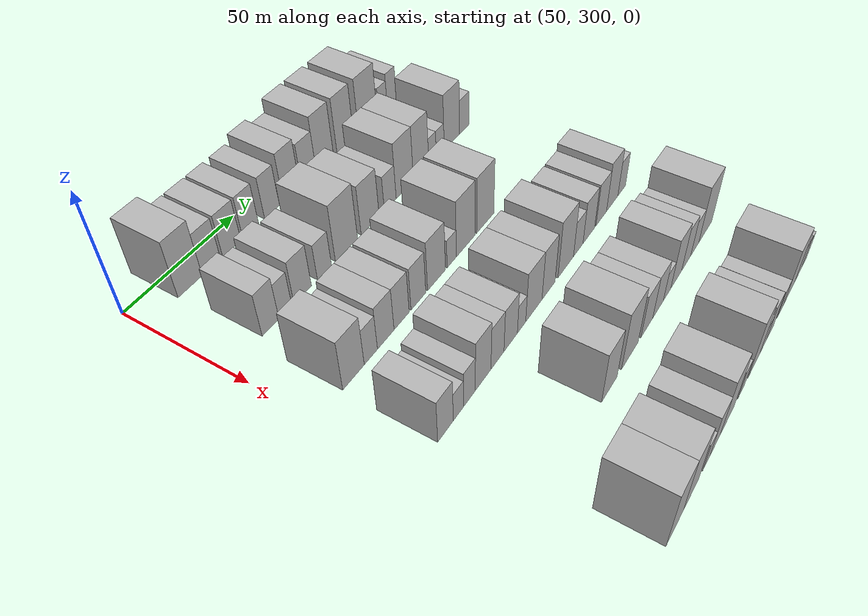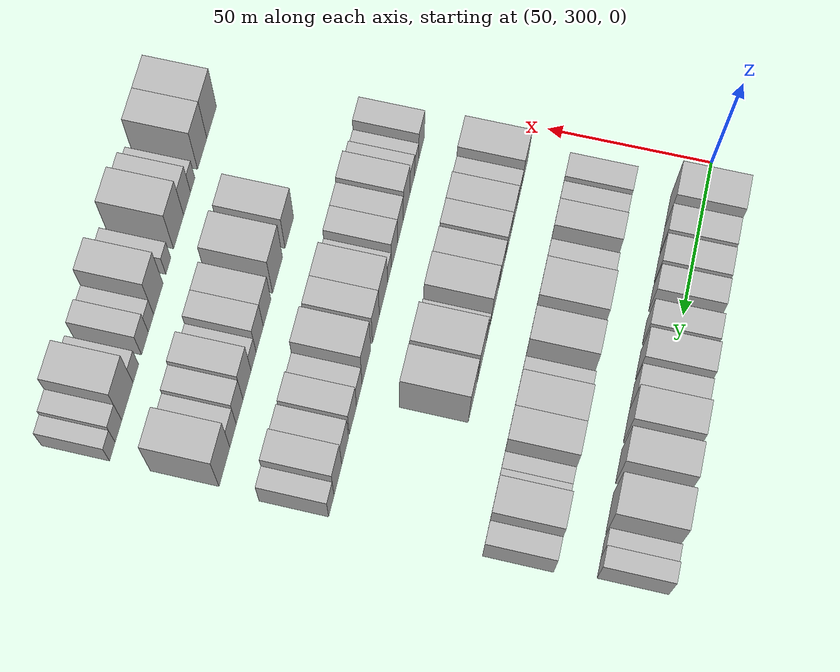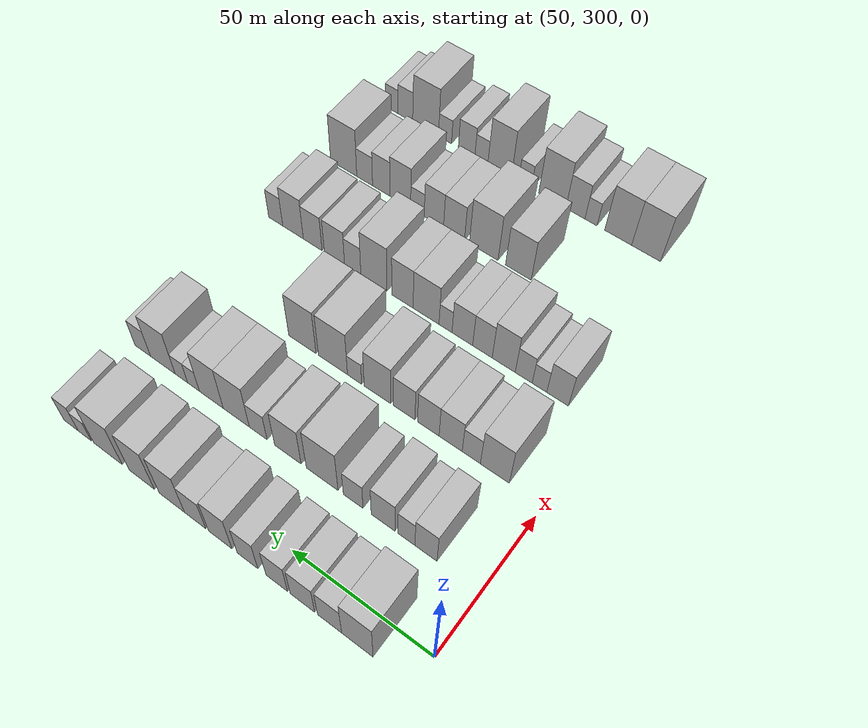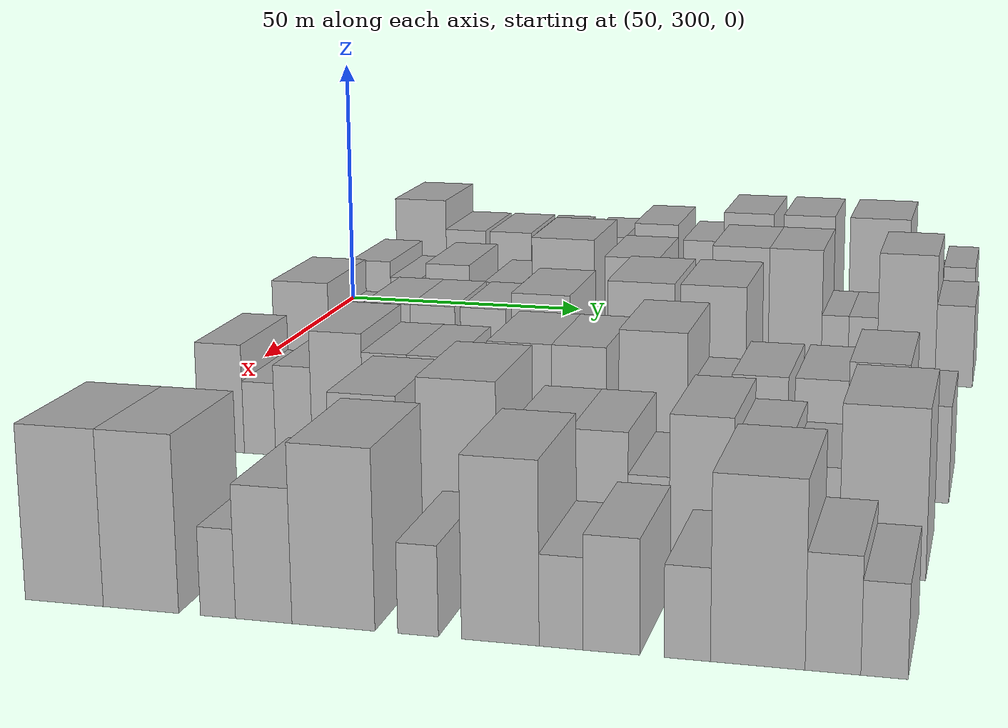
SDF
<sdf version="1.6">
 <world name="default">
  <model name="building_93">
   <static>1</static>
   <pose>50.0000 318.7629 0 0.000000 0.000000 0.000000</pose>
   <link name="link">
    <pose>0 0 12.00 0 0 0</pose>
    <collision name="collision"><geometry><box><size>20.0000 10.7792 24.0000</size></box></geometry></collision>
    <visual name="visual">
     <cast_shadows>0</cast_shadows>
     <geometry><box><size>20.0000 10.7792 24.0000</size></box></geometry>
     <material>
      <script>
       <uri>model://HANNAS_wall/materials/scripts</uri>
       <uri>model://HANNAS_wall/materials/textures</uri>
       <name>vrc/HANNAS_wall</name>
      </script>
     </material>
    </visual>
   </link>
  </model>
  <model name="building_94">
   <static>1</static>
   <pose>50.0000 328.3762 0 0.000000 0.000000 0.000000</pose>
   <link name="link">
    <pose>0 0 9.00 0 0 0</pose>
    <collision name="collision"><geometry><box><size>20.0000 8.4474 18.0000</size></box></geometry></collision>
    <visual name="visual">
     <cast_shadows>0</cast_shadows>
     <geometry><box><size>20.0000 8.4474 18.0000</size></box></geometry>
     <material>
      <script>
       <uri>model://HANNAS_wall/materials/scripts</uri>
       <uri>model://HANNAS_wall/materials/textures</uri>
       <name>vrc/HANNAS_wall</name>
      </script>
     </material>
    </visual>
   </link>
  </model>
  <model name="building_95">
   <static>1</static>
   <pose>50.0000 337.9618 0 0.000000 0.000000 0.000000</pose>
   <link name="link">
    <pose>0 0 9.00 0 0 0</pose>
    <collision name="collision"><geometry><box><size>20.0000 8.7237 18.0000</size></box></geometry></collision>
    <visual name="visual">
     <cast_shadows>0</cast_shadows>
     <geometry><box><size>20.0000 8.7237 18.0000</size></box></geometry>
     <material>
      <script>
       <uri>model://HANNAS_wall/materials/scripts</uri>
       <uri>model://HANNAS_wall/materials/textures</uri>
       <name>vrc/HANNAS_wall</name>
      </script>
     </material>
    </visual>
   </link>
  </model>
  <model name="building_96">
   <static>1</static>
   <pose>50.0000 347.2610 0 0.000000 0.000000 0.000000</pose>
   <link name="link">
    <pose>0 0 9.00 0 0 0</pose>
    <collision name="collision"><geometry><box><size>20.0000 7.8748 18.0000</size></box></geometry></collision>
    <visual name="visual">
     <cast_shadows>0</cast_shadows>
     <geometry><box><size>20.0000 7.8748 18.0000</size></box></geometry>
     <material>
      <script>
       <uri>model://HANNAS_wall/materials/scripts</uri>
       <uri>model://HANNAS_wall/materials/textures</uri>
       <name>vrc/HANNAS_wall</name>
      </script>
     </material>
    </visual>
   </link>
  </model>
  <model name="building_97">
   <static>1</static>
   <pose>50.0000 358.0329 0 0.000000 0.000000 0.000000</pose>
   <link name="link">
    <pose>0 0 9.00 0 0 0</pose>
    <collision name="collision"><geometry><box><size>20.0000 7.6691 18.0000</size></box></geometry></collision>
    <visual name="visual">
     <cast_shadows>0</cast_shadows>
     <geometry><box><size>20.0000 7.6691 18.0000</size></box></geometry>
     <material>
      <script>
       <uri>model://HANNAS_wall/materials/scripts</uri>
       <uri>model://HANNAS_wall/materials/textures</uri>
       <name>vrc/HANNAS_wall</name>
      </script>
     </material>
    </visual>
   </link>
  </model>
  <model name="building_98">
   <static>1</static>
   <pose>50.0000 368.3294 0 0.000000 0.000000 0.000000</pose>
   <link name="link">
    <pose>0 0 10.50 0 0 0</pose>
    <collision name="collision"><geometry><box><size>20.0000 8.9239 21.0000</size></box></geometry></collision>
    <visual name="visual">
     <cast_shadows>0</cast_shadows>
     <geometry><box><size>20.0000 8.9239 21.0000</size></box></geometry>
     <material>
      <script>
       <uri>model://HANNAS_wall/materials/scripts</uri>
       <uri>model://HANNAS_wall/materials/textures</uri>
       <name>vrc/HANNAS_wall</name>
      </script>
     </material>
    </visual>
   </link>
  </model>
  <model name="building_99">
   <static>1</static>
   <pose>50.0000 377.9272 0 0.000000 0.000000 0.000000</pose>
   <link name="link">
    <pose>0 0 9.00 0 0 0</pose>
    <collision name="collision"><geometry><box><size>20.0000 8.2716 18.0000</size></box></geometry></collision>
    <visual name="visual">
     <cast_shadows>0</cast_shadows>
     <geometry><box><size>20.0000 8.2716 18.0000</size></box></geometry>
     <material>
      <script>
       <uri>model://HANNAS_wall/materials/scripts</uri>
       <uri>model://HANNAS_wall/materials/textures</uri>
       <name>vrc/HANNAS_wall</name>
      </script>
     </material>
    </visual>
   </link>
  </model>
  <model name="building_100">
   <static>1</static>
   <pose>50.0000 387.0611 0 0.000000 0.000000 0.000000</pose>
   <link name="link">
    <pose>0 0 12.00 0 0 0</pose>
    <collision name="collision"><geometry><box><size>20.0000 9.9962 24.0000</size></box></geometry></collision>
    <visual name="visual">
     <cast_shadows>0</cast_shadows>
     <geometry><box><size>20.0000 9.9962 24.0000</size></box></geometry>
     <material>
      <script>
       <uri>model://HANNAS_wall/materials/scripts</uri>
       <uri>model://HANNAS_wall/materials/textures</uri>
       <name>vrc/HANNAS_wall</name>
      </script>
     </material>
    </visual>
   </link>
  </model>
  <model name="building_101">
   <static>1</static>
   <pose>50.0000 399.1096 0 0.000000 0.000000 0.000000</pose>
   <link name="link">
    <pose>0 0 12.00 0 0 0</pose>
    <collision name="collision"><geometry><box><size>20.0000 10.1007 24.0000</size></box></geometry></collision>
    <visual name="visual">
     <cast_shadows>0</cast_shadows>
     <geometry><box><size>20.0000 10.1007 24.0000</size></box></geometry>
     <material>
      <script>
       <uri>model://HANNAS_wall/materials/scripts</uri>
       <uri>model://HANNAS_wall/materials/textures</uri>
       <name>vrc/HANNAS_wall</name>
      </script>
     </material>
    </visual>
   </link>
  </model>
  <model name="building_102">
   <static>1</static>
   <pose>50.0000 413.0698 0 0.000000 0.000000 0.000000</pose>
   <link name="link">
    <pose>0 0 12.00 0 0 0</pose>
    <collision name="collision"><geometry><box><size>20.0000 11.8197 24.0000</size></box></geometry></collision>
    <visual name="visual">
     <cast_shadows>0</cast_shadows>
     <geometry><box><size>20.0000 11.8197 24.0000</size></box></geometry>
     <material>
      <script>
       <uri>model://HANNAS_wall/materials/scripts</uri>
       <uri>model://HANNAS_wall/materials/textures</uri>
       <name>vrc/HANNAS_wall</name>
      </script>
     </material>
    </visual>
   </link>
  </model>
  <model name="building_103">
   <static>1</static>
   <pose>50.0000 422.7765 0 0.000000 0.000000 0.000000</pose>
   <link name="link">
    <pose>0 0 6.00 0 0 0</pose>
    <collision name="collision"><geometry><box><size>20.0000 5.5938 12.0000</size></box></geometry></collision>
    <visual name="visual">
     <cast_shadows>0</cast_shadows>
     <geometry><box><size>20.0000 5.5938 12.0000</size></box></geometry>
     <material>
      <script>
       <uri>model://HANNAS_wall/materials/scripts</uri>
       <uri>model://HANNAS_wall/materials/textures</uri>
       <name>vrc/HANNAS_wall</name>
      </script>
     </material>
    </visual>
   </link>
  </model>
  <model name="building_104">
   <static>1</static>
   <pose>50.0000 428.6081 0 0.000000 0.000000 0.000000</pose>
   <link name="link">
    <pose>0 0 7.50 0 0 0</pose>
    <collision name="collision"><geometry><box><size>20.0000 6.0694 15.0000</size></box></geometry></collision>
    <visual name="visual">
     <cast_shadows>0</cast_shadows>
     <geometry><box><size>20.0000 6.0694 15.0000</size></box></geometry>
     <material>
      <script>
       <uri>model://HANNAS_wall/materials/scripts</uri>
       <uri>model://HANNAS_wall/materials/textures</uri>
       <name>vrc/HANNAS_wall</name>
      </script>
     </material>
    </visual>
   </link>
  </model>
  <model name="building_217">
   <static>1</static>
   <pose>82.0000 318.9742 0 0.000000 0.000000 0.000000</pose>
   <link name="link">
    <pose>0 0 9.00 0 0 0</pose>
    <collision name="collision"><geometry><box><size>20.0000 7.7578 18.0000</size></box></geometry></collision>
    <visual name="visual">
     <cast_shadows>0</cast_shadows>
     <geometry><box><size>20.0000 7.7578 18.0000</size></box></geometry>
     <material>
      <script>
       <uri>model://HANNAS_wall/materials/scripts</uri>
       <uri>model://HANNAS_wall/materials/textures</uri>
       <name>vrc/HANNAS_wall</name>
      </script>
     </material>
    </visual>
   </link>
  </model>
  <model name="building_218">
   <static>1</static>
   <pose>82.0000 325.9021 0 0.000000 0.000000 0.000000</pose>
   <link name="link">
    <pose>0 0 7.50 0 0 0</pose>
    <collision name="collision"><geometry><box><size>20.0000 6.0980 15.0000</size></box></geometry></collision>
    <visual name="visual">
     <cast_shadows>0</cast_shadows>
     <geometry><box><size>20.0000 6.0980 15.0000</size></box></geometry>
     <material>
      <script>
       <uri>model://HANNAS_wall/materials/scripts</uri>
       <uri>model://HANNAS_wall/materials/textures</uri>
       <name>vrc/HANNAS_wall</name>
      </script>
     </material>
    </visual>
   </link>
  </model>
  <model name="building_219">
   <static>1</static>
   <pose>82.0000 334.2388 0 0.000000 0.000000 0.000000</pose>
   <link name="link">
    <pose>0 0 9.00 0 0 0</pose>
    <collision name="collision"><geometry><box><size>20.0000 8.5753 18.0000</size></box></geometry></collision>
    <visual name="visual">
     <cast_shadows>0</cast_shadows>
     <geometry><box><size>20.0000 8.5753 18.0000</size></box></geometry>
     <material>
      <script>
       <uri>model://HANNAS_wall/materials/scripts</uri>
       <uri>model://HANNAS_wall/materials/textures</uri>
       <name>vrc/HANNAS_wall</name>
      </script>
     </material>
    </visual>
   </link>
  </model>
  <model name="building_220">
   <static>1</static>
   <pose>82.0000 345.1519 0 0.000000 0.000000 0.000000</pose>
   <link name="link">
    <pose>0 0 7.50 0 0 0</pose>
    <collision name="collision"><geometry><box><size>20.0000 7.2509 15.0000</size></box></geometry></collision>
    <visual name="visual">
     <cast_shadows>0</cast_shadows>
     <geometry><box><size>20.0000 7.2509 15.0000</size></box></geometry>
     <material>
      <script>
       <uri>model://HANNAS_wall/materials/scripts</uri>
       <uri>model://HANNAS_wall/materials/textures</uri>
       <name>vrc/HANNAS_wall</name>
      </script>
     </material>
    </visual>
   </link>
  </model>
  <model name="building_221">
   <static>1</static>
   <pose>82.0000 356.7649 0 0.000000 0.000000 0.000000</pose>
   <link name="link">
    <pose>0 0 12.00 0 0 0</pose>
    <collision name="collision"><geometry><box><size>20.0000 11.9751 24.0000</size></box></geometry></collision>
    <visual name="visual">
     <cast_shadows>0</cast_shadows>
     <geometry><box><size>20.0000 11.9751 24.0000</size></box></geometry>
     <material>
      <script>
       <uri>model://HANNAS_wall/materials/scripts</uri>
       <uri>model://HANNAS_wall/materials/textures</uri>
       <name>vrc/HANNAS_wall</name>
      </script>
     </material>
    </visual>
   </link>
  </model>
  <model name="building_222">
   <static>1</static>
   <pose>82.0000 369.8709 0 0.000000 0.000000 0.000000</pose>
   <link name="link">
    <pose>0 0 10.50 0 0 0</pose>
    <collision name="collision"><geometry><box><size>20.0000 10.2370 21.0000</size></box></geometry></collision>
    <visual name="visual">
     <cast_shadows>0</cast_shadows>
     <geometry><box><size>20.0000 10.2370 21.0000</size></box></geometry>
     <material>
      <script>
       <uri>model://HANNAS_wall/materials/scripts</uri>
       <uri>model://HANNAS_wall/materials/textures</uri>
       <name>vrc/HANNAS_wall</name>
      </script>
     </material>
    </visual>
   </link>
  </model>
  <model name="building_223">
   <static>1</static>
   <pose>82.0000 381.4920 0 0.000000 0.000000 0.000000</pose>
   <link name="link">
    <pose>0 0 7.50 0 0 0</pose>
    <collision name="collision"><geometry><box><size>20.0000 7.0051 15.0000</size></box></geometry></collision>
    <visual name="visual">
     <cast_shadows>0</cast_shadows>
     <geometry><box><size>20.0000 7.0051 15.0000</size></box></geometry>
     <material>
      <script>
       <uri>model://HANNAS_wall/materials/scripts</uri>
       <uri>model://HANNAS_wall/materials/textures</uri>
       <name>vrc/HANNAS_wall</name>
      </script>
     </material>
    </visual>
   </link>
  </model>
  <model name="building_224">
   <static>1</static>
   <pose>82.0000 390.2802 0 0.000000 0.000000 0.000000</pose>
   <link name="link">
    <pose>0 0 12.00 0 0 0</pose>
    <collision name="collision"><geometry><box><size>20.0000 10.5713 24.0000</size></box></geometry></collision>
    <visual name="visual">
     <cast_shadows>0</cast_shadows>
     <geometry><box><size>20.0000 10.5713 24.0000</size></box></geometry>
     <material>
      <script>
       <uri>model://HANNAS_wall/materials/scripts</uri>
       <uri>model://HANNAS_wall/materials/textures</uri>
       <name>vrc/HANNAS_wall</name>
      </script>
     </material>
    </visual>
   </link>
  </model>
  <model name="building_225">
   <static>1</static>
   <pose>82.0000 400.4667 0 0.000000 0.000000 0.000000</pose>
   <link name="link">
    <pose>0 0 12.00 0 0 0</pose>
    <collision name="collision"><geometry><box><size>20.0000 9.8017 24.0000</size></box></geometry></collision>
    <visual name="visual">
     <cast_shadows>0</cast_shadows>
     <geometry><box><size>20.0000 9.8017 24.0000</size></box></geometry>
     <material>
      <script>
       <uri>model://HANNAS_wall/materials/scripts</uri>
       <uri>model://HANNAS_wall/materials/textures</uri>
       <name>vrc/HANNAS_wall</name>
      </script>
     </material>
    </visual>
   </link>
  </model>
  <model name="building_226">
   <static>1</static>
   <pose>82.0000 407.8193 0 0.000000 0.000000 0.000000</pose>
   <link name="link">
    <pose>0 0 6.00 0 0 0</pose>
    <collision name="collision"><geometry><box><size>20.0000 4.9035 12.0000</size></box></geometry></collision>
    <visual name="visual">
     <cast_shadows>0</cast_shadows>
     <geometry><box><size>20.0000 4.9035 12.0000</size></box></geometry>
     <material>
      <script>
       <uri>model://HANNAS_wall/materials/scripts</uri>
       <uri>model://HANNAS_wall/materials/textures</uri>
       <name>vrc/HANNAS_wall</name>
      </script>
     </material>
    </visual>
   </link>
  </model>
  <model name="building_227">
   <static>1</static>
   <pose>82.0000 412.8957 0 0.000000 0.000000 0.000000</pose>
   <link name="link">
    <pose>0 0 6.00 0 0 0</pose>
    <collision name="collision"><geometry><box><size>20.0000 5.2493 12.0000</size></box></geometry></collision>
    <visual name="visual">
     <cast_shadows>0</cast_shadows>
     <geometry><box><size>20.0000 5.2493 12.0000</size></box></geometry>
     <material>
      <script>
       <uri>model://HANNAS_wall/materials/scripts</uri>
       <uri>model://HANNAS_wall/materials/textures</uri>
       <name>vrc/HANNAS_wall</name>
      </script>
     </material>
    </visual>
   </link>
  </model>
  <model name="building_228">
   <static>1</static>
   <pose>82.0000 420.7695 0 0.000000 0.000000 0.000000</pose>
   <link name="link">
    <pose>0 0 12.00 0 0 0</pose>
    <collision name="collision"><geometry><box><size>20.0000 10.4983 24.0000</size></box></geometry></collision>
    <visual name="visual">
     <cast_shadows>0</cast_shadows>
     <geometry><box><size>20.0000 10.4983 24.0000</size></box></geometry>
     <material>
      <script>
       <uri>model://HANNAS_wall/materials/scripts</uri>
       <uri>model://HANNAS_wall/materials/textures</uri>
       <name>vrc/HANNAS_wall</name>
      </script>
     </material>
    </visual>
   </link>
  </model>
  <model name="building_229">
   <static>1</static>
   <pose>82.0000 429.3785 0 0.000000 0.000000 0.000000</pose>
   <link name="link">
    <pose>0 0 7.50 0 0 0</pose>
    <collision name="collision"><geometry><box><size>20.0000 6.7196 15.0000</size></box></geometry></collision>
    <visual name="visual">
     <cast_shadows>0</cast_shadows>
     <geometry><box><size>20.0000 6.7196 15.0000</size></box></geometry>
     <material>
      <script>
       <uri>model://HANNAS_wall/materials/scripts</uri>
       <uri>model://HANNAS_wall/materials/textures</uri>
       <name>vrc/HANNAS_wall</name>
      </script>
     </material>
    </visual>
   </link>
  </model>
  <model name="building_337">
   <static>1</static>
   <pose>114.0000 317.0453 0 0.000000 0.000000 0.000000</pose>
   <link name="link">
    <pose>0 0 10.50 0 0 0</pose>
    <collision name="collision"><geometry><box><size>20.0000 10.3154 21.0000</size></box></geometry></collision>
    <visual name="visual">
     <cast_shadows>0</cast_shadows>
     <geometry><box><size>20.0000 10.3154 21.0000</size></box></geometry>
     <material>
      <script>
       <uri>model://HANNAS_wall/materials/scripts</uri>
       <uri>model://HANNAS_wall/materials/textures</uri>
       <name>vrc/HANNAS_wall</name>
      </script>
     </material>
    </visual>
   </link>
  </model>
  <model name="building_338">
   <static>1</static>
   <pose>114.0000 325.4904 0 0.000000 0.000000 0.000000</pose>
   <link name="link">
    <pose>0 0 7.50 0 0 0</pose>
    <collision name="collision"><geometry><box><size>20.0000 6.5748 15.0000</size></box></geometry></collision>
    <visual name="visual">
     <cast_shadows>0</cast_shadows>
     <geometry><box><size>20.0000 6.5748 15.0000</size></box></geometry>
     <material>
      <script>
       <uri>model://HANNAS_wall/materials/scripts</uri>
       <uri>model://HANNAS_wall/materials/textures</uri>
       <name>vrc/HANNAS_wall</name>
      </script>
     </material>
    </visual>
   </link>
  </model>
  <model name="building_339">
   <static>1</static>
   <pose>114.0000 333.0265 0 0.000000 0.000000 0.000000</pose>
   <link name="link">
    <pose>0 0 9.00 0 0 0</pose>
    <collision name="collision"><geometry><box><size>20.0000 8.4974 18.0000</size></box></geometry></collision>
    <visual name="visual">
     <cast_shadows>0</cast_shadows>
     <geometry><box><size>20.0000 8.4974 18.0000</size></box></geometry>
     <material>
      <script>
       <uri>model://HANNAS_wall/materials/scripts</uri>
       <uri>model://HANNAS_wall/materials/textures</uri>
       <name>vrc/HANNAS_wall</name>
      </script>
     </material>
    </visual>
   </link>
  </model>
  <model name="building_340">
   <static>1</static>
   <pose>114.0000 341.3000 0 0.000000 0.000000 0.000000</pose>
   <link name="link">
    <pose>0 0 9.00 0 0 0</pose>
    <collision name="collision"><geometry><box><size>20.0000 8.0494 18.0000</size></box></geometry></collision>
    <visual name="visual">
     <cast_shadows>0</cast_shadows>
     <geometry><box><size>20.0000 8.0494 18.0000</size></box></geometry>
     <material>
      <script>
       <uri>model://HANNAS_wall/materials/scripts</uri>
       <uri>model://HANNAS_wall/materials/textures</uri>
       <name>vrc/HANNAS_wall</name>
      </script>
     </material>
    </visual>
   </link>
  </model>
  <model name="building_341">
   <static>1</static>
   <pose>114.0000 350.4089 0 0.000000 0.000000 0.000000</pose>
   <link name="link">
    <pose>0 0 9.00 0 0 0</pose>
    <collision name="collision"><geometry><box><size>20.0000 8.1684 18.0000</size></box></geometry></collision>
    <visual name="visual">
     <cast_shadows>0</cast_shadows>
     <geometry><box><size>20.0000 8.1684 18.0000</size></box></geometry>
     <material>
      <script>
       <uri>model://HANNAS_wall/materials/scripts</uri>
       <uri>model://HANNAS_wall/materials/textures</uri>
       <name>vrc/HANNAS_wall</name>
      </script>
     </material>
    </visual>
   </link>
  </model>
  <model name="building_342">
   <static>1</static>
   <pose>114.0000 360.6477 0 0.000000 0.000000 0.000000</pose>
   <link name="link">
    <pose>0 0 10.50 0 0 0</pose>
    <collision name="collision"><geometry><box><size>20.0000 10.3093 21.0000</size></box></geometry></collision>
    <visual name="visual">
     <cast_shadows>0</cast_shadows>
     <geometry><box><size>20.0000 10.3093 21.0000</size></box></geometry>
     <material>
      <script>
       <uri>model://HANNAS_wall/materials/scripts</uri>
       <uri>model://HANNAS_wall/materials/textures</uri>
       <name>vrc/HANNAS_wall</name>
      </script>
     </material>
    </visual>
   </link>
  </model>
  <model name="building_343">
   <static>1</static>
   <pose>114.0000 369.5740 0 0.000000 0.000000 0.000000</pose>
   <link name="link">
    <pose>0 0 6.00 0 0 0</pose>
    <collision name="collision"><geometry><box><size>20.0000 5.5432 12.0000</size></box></geometry></collision>
    <visual name="visual">
     <cast_shadows>0</cast_shadows>
     <geometry><box><size>20.0000 5.5432 12.0000</size></box></geometry>
     <material>
      <script>
       <uri>model://HANNAS_wall/materials/scripts</uri>
       <uri>model://HANNAS_wall/materials/textures</uri>
       <name>vrc/HANNAS_wall</name>
      </script>
     </material>
    </visual>
   </link>
  </model>
  <model name="building_344">
   <static>1</static>
   <pose>114.0000 378.1461 0 0.000000 0.000000 0.000000</pose>
   <link name="link">
    <pose>0 0 12.00 0 0 0</pose>
    <collision name="collision"><geometry><box><size>20.0000 11.6010 24.0000</size></box></geometry></collision>
    <visual name="visual">
     <cast_shadows>0</cast_shadows>
     <geometry><box><size>20.0000 11.6010 24.0000</size></box></geometry>
     <material>
      <script>
       <uri>model://HANNAS_wall/materials/scripts</uri>
       <uri>model://HANNAS_wall/materials/textures</uri>
       <name>vrc/HANNAS_wall</name>
      </script>
     </material>
    </visual>
   </link>
  </model>
  <model name="building_345">
   <static>1</static>
   <pose>114.0000 390.5290 0 0.000000 0.000000 0.000000</pose>
   <link name="link">
    <pose>0 0 12.00 0 0 0</pose>
    <collision name="collision"><geometry><box><size>20.0000 11.1648 24.0000</size></box></geometry></collision>
    <visual name="visual">
     <cast_shadows>0</cast_shadows>
     <geometry><box><size>20.0000 11.1648 24.0000</size></box></geometry>
     <material>
      <script>
       <uri>model://HANNAS_wall/materials/scripts</uri>
       <uri>model://HANNAS_wall/materials/textures</uri>
       <name>vrc/HANNAS_wall</name>
      </script>
     </material>
    </visual>
   </link>
  </model>
  <model name="building_446">
   <static>1</static>
   <pose>146.0000 315.3664 0 0.000000 0.000000 0.000000</pose>
   <link name="link">
    <pose>0 0 9.00 0 0 0</pose>
    <collision name="collision"><geometry><box><size>20.0000 7.8794 18.0000</size></box></geometry></collision>
    <visual name="visual">
     <cast_shadows>0</cast_shadows>
     <geometry><box><size>20.0000 7.8794 18.0000</size></box></geometry>
     <material>
      <script>
       <uri>model://HANNAS_wall/materials/scripts</uri>
       <uri>model://HANNAS_wall/materials/textures</uri>
       <name>vrc/HANNAS_wall</name>
      </script>
     </material>
    </visual>
   </link>
  </model>
  <model name="building_447">
   <static>1</static>
   <pose>146.0000 321.9917 0 0.000000 0.000000 0.000000</pose>
   <link name="link">
    <pose>0 0 6.00 0 0 0</pose>
    <collision name="collision"><geometry><box><size>20.0000 5.3712 12.0000</size></box></geometry></collision>
    <visual name="visual">
     <cast_shadows>0</cast_shadows>
     <geometry><box><size>20.0000 5.3712 12.0000</size></box></geometry>
     <material>
      <script>
       <uri>model://HANNAS_wall/materials/scripts</uri>
       <uri>model://HANNAS_wall/materials/textures</uri>
       <name>vrc/HANNAS_wall</name>
      </script>
     </material>
    </visual>
   </link>
  </model>
  <model name="building_448">
   <static>1</static>
   <pose>146.0000 327.8166 0 0.000000 0.000000 0.000000</pose>
   <link name="link">
    <pose>0 0 7.50 0 0 0</pose>
    <collision name="collision"><geometry><box><size>20.0000 6.2786 15.0000</size></box></geometry></collision>
    <visual name="visual">
     <cast_shadows>0</cast_shadows>
     <geometry><box><size>20.0000 6.2786 15.0000</size></box></geometry>
     <material>
      <script>
       <uri>model://HANNAS_wall/materials/scripts</uri>
       <uri>model://HANNAS_wall/materials/textures</uri>
       <name>vrc/HANNAS_wall</name>
      </script>
     </material>
    </visual>
   </link>
  </model>
  <model name="building_449">
   <static>1</static>
   <pose>146.0000 335.2959 0 0.000000 0.000000 0.000000</pose>
   <link name="link">
    <pose>0 0 10.50 0 0 0</pose>
    <collision name="collision"><geometry><box><size>20.0000 8.6800 21.0000</size></box></geometry></collision>
    <visual name="visual">
     <cast_shadows>0</cast_shadows>
     <geometry><box><size>20.0000 8.6800 21.0000</size></box></geometry>
     <material>
      <script>
       <uri>model://HANNAS_wall/materials/scripts</uri>
       <uri>model://HANNAS_wall/materials/textures</uri>
       <name>vrc/HANNAS_wall</name>
      </script>
     </material>
    </visual>
   </link>
  </model>
  <model name="building_450">
   <static>1</static>
   <pose>146.0000 343.3808 0 0.000000 0.000000 0.000000</pose>
   <link name="link">
    <pose>0 0 9.00 0 0 0</pose>
    <collision name="collision"><geometry><box><size>20.0000 7.4898 18.0000</size></box></geometry></collision>
    <visual name="visual">
     <cast_shadows>0</cast_shadows>
     <geometry><box><size>20.0000 7.4898 18.0000</size></box></geometry>
     <material>
      <script>
       <uri>model://HANNAS_wall/materials/scripts</uri>
       <uri>model://HANNAS_wall/materials/textures</uri>
       <name>vrc/HANNAS_wall</name>
      </script>
     </material>
    </visual>
   </link>
  </model>
  <model name="building_451">
   <static>1</static>
   <pose>146.0000 351.1276 0 0.000000 0.000000 0.000000</pose>
   <link name="link">
    <pose>0 0 9.00 0 0 0</pose>
    <collision name="collision"><geometry><box><size>20.0000 8.0038 18.0000</size></box></geometry></collision>
    <visual name="visual">
     <cast_shadows>0</cast_shadows>
     <geometry><box><size>20.0000 8.0038 18.0000</size></box></geometry>
     <material>
      <script>
       <uri>model://HANNAS_wall/materials/scripts</uri>
       <uri>model://HANNAS_wall/materials/textures</uri>
       <name>vrc/HANNAS_wall</name>
      </script>
     </material>
    </visual>
   </link>
  </model>
  <model name="building_452">
   <static>1</static>
   <pose>146.0000 357.6821 0 0.000000 0.000000 0.000000</pose>
   <link name="link">
    <pose>0 0 6.00 0 0 0</pose>
    <collision name="collision"><geometry><box><size>20.0000 5.1051 12.0000</size></box></geometry></collision>
    <visual name="visual">
     <cast_shadows>0</cast_shadows>
     <geometry><box><size>20.0000 5.1051 12.0000</size></box></geometry>
     <material>
      <script>
       <uri>model://HANNAS_wall/materials/scripts</uri>
       <uri>model://HANNAS_wall/materials/textures</uri>
       <name>vrc/HANNAS_wall</name>
      </script>
     </material>
    </visual>
   </link>
  </model>
  <model name="building_453">
   <static>1</static>
   <pose>146.0000 365.3919 0 0.000000 0.000000 0.000000</pose>
   <link name="link">
    <pose>0 0 10.50 0 0 0</pose>
    <collision name="collision"><geometry><box><size>20.0000 10.3145 21.0000</size></box></geometry></collision>
    <visual name="visual">
     <cast_shadows>0</cast_shadows>
     <geometry><box><size>20.0000 10.3145 21.0000</size></box></geometry>
     <material>
      <script>
       <uri>model://HANNAS_wall/materials/scripts</uri>
       <uri>model://HANNAS_wall/materials/textures</uri>
       <name>vrc/HANNAS_wall</name>
      </script>
     </material>
    </visual>
   </link>
  </model>
  <model name="building_454">
   <static>1</static>
   <pose>146.0000 374.8633 0 0.000000 0.000000 0.000000</pose>
   <link name="link">
    <pose>0 0 10.50 0 0 0</pose>
    <collision name="collision"><geometry><box><size>20.0000 8.6283 21.0000</size></box></geometry></collision>
    <visual name="visual">
     <cast_shadows>0</cast_shadows>
     <geometry><box><size>20.0000 8.6283 21.0000</size></box></geometry>
     <material>
      <script>
       <uri>model://HANNAS_wall/materials/scripts</uri>
       <uri>model://HANNAS_wall/materials/textures</uri>
       <name>vrc/HANNAS_wall</name>
      </script>
     </material>
    </visual>
   </link>
  </model>
  <model name="building_455">
   <static>1</static>
   <pose>146.0000 386.5306 0 0.000000 0.000000 0.000000</pose>
   <link name="link">
    <pose>0 0 12.00 0 0 0</pose>
    <collision name="collision"><geometry><box><size>20.0000 10.7063 24.0000</size></box></geometry></collision>
    <visual name="visual">
     <cast_shadows>0</cast_shadows>
     <geometry><box><size>20.0000 10.7063 24.0000</size></box></geometry>
     <material>
      <script>
       <uri>model://HANNAS_wall/materials/scripts</uri>
       <uri>model://HANNAS_wall/materials/textures</uri>
       <name>vrc/HANNAS_wall</name>
      </script>
     </material>
    </visual>
   </link>
  </model>
  <model name="building_456">
   <static>1</static>
   <pose>146.0000 395.2908 0 0.000000 0.000000 0.000000</pose>
   <link name="link">
    <pose>0 0 7.50 0 0 0</pose>
    <collision name="collision"><geometry><box><size>20.0000 6.8141 15.0000</size></box></geometry></collision>
    <visual name="visual">
     <cast_shadows>0</cast_shadows>
     <geometry><box><size>20.0000 6.8141 15.0000</size></box></geometry>
     <material>
      <script>
       <uri>model://HANNAS_wall/materials/scripts</uri>
       <uri>model://HANNAS_wall/materials/textures</uri>
       <name>vrc/HANNAS_wall</name>
      </script>
     </material>
    </visual>
   </link>
  </model>
  <model name="building_457">
   <static>1</static>
   <pose>146.0000 402.9980 0 0.000000 0.000000 0.000000</pose>
   <link name="link">
    <pose>0 0 9.00 0 0 0</pose>
    <collision name="collision"><geometry><box><size>20.0000 8.6003 18.0000</size></box></geometry></collision>
    <visual name="visual">
     <cast_shadows>0</cast_shadows>
     <geometry><box><size>20.0000 8.6003 18.0000</size></box></geometry>
     <material>
      <script>
       <uri>model://HANNAS_wall/materials/scripts</uri>
       <uri>model://HANNAS_wall/materials/textures</uri>
       <name>vrc/HANNAS_wall</name>
      </script>
     </material>
    </visual>
   </link>
  </model>
  <model name="building_458">
   <static>1</static>
   <pose>146.0000 412.3404 0 0.000000 0.000000 0.000000</pose>
   <link name="link">
    <pose>0 0 9.00 0 0 0</pose>
    <collision name="collision"><geometry><box><size>20.0000 8.0846 18.0000</size></box></geometry></collision>
    <visual name="visual">
     <cast_shadows>0</cast_shadows>
     <geometry><box><size>20.0000 8.0846 18.0000</size></box></geometry>
     <material>
      <script>
       <uri>model://HANNAS_wall/materials/scripts</uri>
       <uri>model://HANNAS_wall/materials/textures</uri>
       <name>vrc/HANNAS_wall</name>
      </script>
     </material>
    </visual>
   </link>
  </model>
  <model name="building_459">
   <static>1</static>
   <pose>146.0000 420.8948 0 0.000000 0.000000 0.000000</pose>
   <link name="link">
    <pose>0 0 10.50 0 0 0</pose>
    <collision name="collision"><geometry><box><size>20.0000 9.0243 21.0000</size></box></geometry></collision>
    <visual name="visual">
     <cast_shadows>0</cast_shadows>
     <geometry><box><size>20.0000 9.0243 21.0000</size></box></geometry>
     <material>
      <script>
       <uri>model://HANNAS_wall/materials/scripts</uri>
       <uri>model://HANNAS_wall/materials/textures</uri>
       <name>vrc/HANNAS_wall</name>
      </script>
     </material>
    </visual>
   </link>
  </model>
  <model name="building_460">
   <static>1</static>
   <pose>146.0000 428.5212 0 0.000000 0.000000 0.000000</pose>
   <link name="link">
    <pose>0 0 7.50 0 0 0</pose>
    <collision name="collision"><geometry><box><size>20.0000 6.2284 15.0000</size></box></geometry></collision>
    <visual name="visual">
     <cast_shadows>0</cast_shadows>
     <geometry><box><size>20.0000 6.2284 15.0000</size></box></geometry>
     <material>
      <script>
       <uri>model://HANNAS_wall/materials/scripts</uri>
       <uri>model://HANNAS_wall/materials/textures</uri>
       <name>vrc/HANNAS_wall</name>
      </script>
     </material>
    </visual>
   </link>
  </model>
  <model name="building_565">
   <static>1</static>
   <pose>178.0000 350.9255 0 0.000000 0.000000 0.000000</pose>
   <link name="link">
    <pose>0 0 10.50 0 0 0</pose>
    <collision name="collision"><geometry><box><size>20.0000 10.1385 21.0000</size></box></geometry></collision>
    <visual name="visual">
     <cast_shadows>0</cast_shadows>
     <geometry><box><size>20.0000 10.1385 21.0000</size></box></geometry>
     <material>
      <script>
       <uri>model://HANNAS_wall/materials/scripts</uri>
       <uri>model://HANNAS_wall/materials/textures</uri>
       <name>vrc/HANNAS_wall</name>
      </script>
     </material>
    </visual>
   </link>
  </model>
  <model name="building_566">
   <static>1</static>
   <pose>178.0000 364.7926 0 0.000000 0.000000 0.000000</pose>
   <link name="link">
    <pose>0 0 12.00 0 0 0</pose>
    <collision name="collision"><geometry><box><size>20.0000 11.5956 24.0000</size></box></geometry></collision>
    <visual name="visual">
     <cast_shadows>0</cast_shadows>
     <geometry><box><size>20.0000 11.5956 24.0000</size></box></geometry>
     <material>
      <script>
       <uri>model://HANNAS_wall/materials/scripts</uri>
       <uri>model://HANNAS_wall/materials/textures</uri>
       <name>vrc/HANNAS_wall</name>
      </script>
     </material>
    </visual>
   </link>
  </model>
  <model name="building_567">
   <static>1</static>
   <pose>178.0000 376.9195 0 0.000000 0.000000 0.000000</pose>
   <link name="link">
    <pose>0 0 9.00 0 0 0</pose>
    <collision name="collision"><geometry><box><size>20.0000 8.6582 18.0000</size></box></geometry></collision>
    <visual name="visual">
     <cast_shadows>0</cast_shadows>
     <geometry><box><size>20.0000 8.6582 18.0000</size></box></geometry>
     <material>
      <script>
       <uri>model://HANNAS_wall/materials/scripts</uri>
       <uri>model://HANNAS_wall/materials/textures</uri>
       <name>vrc/HANNAS_wall</name>
      </script>
     </material>
    </visual>
   </link>
  </model>
  <model name="building_568">
   <static>1</static>
   <pose>178.0000 385.2992 0 0.000000 0.000000 0.000000</pose>
   <link name="link">
    <pose>0 0 9.00 0 0 0</pose>
    <collision name="collision"><geometry><box><size>20.0000 8.1012 18.0000</size></box></geometry></collision>
    <visual name="visual">
     <cast_shadows>0</cast_shadows>
     <geometry><box><size>20.0000 8.1012 18.0000</size></box></geometry>
     <material>
      <script>
       <uri>model://HANNAS_wall/materials/scripts</uri>
       <uri>model://HANNAS_wall/materials/textures</uri>
       <name>vrc/HANNAS_wall</name>
      </script>
     </material>
    </visual>
   </link>
  </model>
  <model name="building_569">
   <static>1</static>
   <pose>178.0000 392.2453 0 0.000000 0.000000 0.000000</pose>
   <link name="link">
    <pose>0 0 6.00 0 0 0</pose>
    <collision name="collision"><geometry><box><size>20.0000 5.7910 12.0000</size></box></geometry></collision>
    <visual name="visual">
     <cast_shadows>0</cast_shadows>
     <geometry><box><size>20.0000 5.7910 12.0000</size></box></geometry>
     <material>
      <script>
       <uri>model://HANNAS_wall/materials/scripts</uri>
       <uri>model://HANNAS_wall/materials/textures</uri>
       <name>vrc/HANNAS_wall</name>
      </script>
     </material>
    </visual>
   </link>
  </model>
  <model name="building_570">
   <static>1</static>
   <pose>178.0000 399.5851 0 0.000000 0.000000 0.000000</pose>
   <link name="link">
    <pose>0 0 10.50 0 0 0</pose>
    <collision name="collision"><geometry><box><size>20.0000 8.8887 21.0000</size></box></geometry></collision>
    <visual name="visual">
     <cast_shadows>0</cast_shadows>
     <geometry><box><size>20.0000 8.8887 21.0000</size></box></geometry>
     <material>
      <script>
       <uri>model://HANNAS_wall/materials/scripts</uri>
       <uri>model://HANNAS_wall/materials/textures</uri>
       <name>vrc/HANNAS_wall</name>
      </script>
     </material>
    </visual>
   </link>
  </model>
  <model name="building_571">
   <static>1</static>
   <pose>178.0000 407.7865 0 0.000000 0.000000 0.000000</pose>
   <link name="link">
    <pose>0 0 9.00 0 0 0</pose>
    <collision name="collision"><geometry><box><size>20.0000 7.5141 18.0000</size></box></geometry></collision>
    <visual name="visual">
     <cast_shadows>0</cast_shadows>
     <geometry><box><size>20.0000 7.5141 18.0000</size></box></geometry>
     <material>
      <script>
       <uri>model://HANNAS_wall/materials/scripts</uri>
       <uri>model://HANNAS_wall/materials/textures</uri>
       <name>vrc/HANNAS_wall</name>
      </script>
     </material>
    </visual>
   </link>
  </model>
  <model name="building_572">
   <static>1</static>
   <pose>178.0000 415.0185 0 0.000000 0.000000 0.000000</pose>
   <link name="link">
    <pose>0 0 7.50 0 0 0</pose>
    <collision name="collision"><geometry><box><size>20.0000 6.9498 15.0000</size></box></geometry></collision>
    <visual name="visual">
     <cast_shadows>0</cast_shadows>
     <geometry><box><size>20.0000 6.9498 15.0000</size></box></geometry>
     <material>
      <script>
       <uri>model://HANNAS_wall/materials/scripts</uri>
       <uri>model://HANNAS_wall/materials/textures</uri>
       <name>vrc/HANNAS_wall</name>
      </script>
     </material>
    </visual>
   </link>
  </model>
  <model name="building_573">
   <static>1</static>
   <pose>178.0000 424.3242 0 0.000000 0.000000 0.000000</pose>
   <link name="link">
    <pose>0 0 12.00 0 0 0</pose>
    <collision name="collision"><geometry><box><size>20.0000 11.6616 24.0000</size></box></geometry></collision>
    <visual name="visual">
     <cast_shadows>0</cast_shadows>
     <geometry><box><size>20.0000 11.6616 24.0000</size></box></geometry>
     <material>
      <script>
       <uri>model://HANNAS_wall/materials/scripts</uri>
       <uri>model://HANNAS_wall/materials/textures</uri>
       <name>vrc/HANNAS_wall</name>
      </script>
     </material>
    </visual>
   </link>
  </model>
  <model name="building_681">
   <static>1</static>
   <pose>210.0000 321.0263 0 0.000000 0.000000 0.000000</pose>
   <link name="link">
    <pose>0 0 12.00 0 0 0</pose>
    <collision name="collision"><geometry><box><size>20.0000 11.0519 24.0000</size></box></geometry></collision>
    <visual name="visual">
     <cast_shadows>0</cast_shadows>
     <geometry><box><size>20.0000 11.0519 24.0000</size></box></geometry>
     <material>
      <script>
       <uri>model://HANNAS_wall/materials/scripts</uri>
       <uri>model://HANNAS_wall/materials/textures</uri>
       <name>vrc/HANNAS_wall</name>
      </script>
     </material>
    </visual>
   </link>
  </model>
  <model name="building_682">
   <static>1</static>
   <pose>210.0000 331.8030 0 0.000000 0.000000 0.000000</pose>
   <link name="link">
    <pose>0 0 12.00 0 0 0</pose>
    <collision name="collision"><geometry><box><size>20.0000 10.5014 24.0000</size></box></geometry></collision>
    <visual name="visual">
     <cast_shadows>0</cast_shadows>
     <geometry><box><size>20.0000 10.5014 24.0000</size></box></geometry>
     <material>
      <script>
       <uri>model://HANNAS_wall/materials/scripts</uri>
       <uri>model://HANNAS_wall/materials/textures</uri>
       <name>vrc/HANNAS_wall</name>
      </script>
     </material>
    </visual>
   </link>
  </model>
  <model name="building_683">
   <static>1</static>
   <pose>210.0000 342.4600 0 0.000000 0.000000 0.000000</pose>
   <link name="link">
    <pose>0 0 6.00 0 0 0</pose>
    <collision name="collision"><geometry><box><size>20.0000 4.8127 12.0000</size></box></geometry></collision>
    <visual name="visual">
     <cast_shadows>0</cast_shadows>
     <geometry><box><size>20.0000 4.8127 12.0000</size></box></geometry>
     <material>
      <script>
       <uri>model://HANNAS_wall/materials/scripts</uri>
       <uri>model://HANNAS_wall/materials/textures</uri>
       <name>vrc/HANNAS_wall</name>
      </script>
     </material>
    </visual>
   </link>
  </model>
  <model name="building_684">
   <static>1</static>
   <pose>210.0000 348.6881 0 0.000000 0.000000 0.000000</pose>
   <link name="link">
    <pose>0 0 9.00 0 0 0</pose>
    <collision name="collision"><geometry><box><size>20.0000 7.6434 18.0000</size></box></geometry></collision>
    <visual name="visual">
     <cast_shadows>0</cast_shadows>
     <geometry><box><size>20.0000 7.6434 18.0000</size></box></geometry>
     <material>
      <script>
       <uri>model://HANNAS_wall/materials/scripts</uri>
       <uri>model://HANNAS_wall/materials/textures</uri>
       <name>vrc/HANNAS_wall</name>
      </script>
     </material>
    </visual>
   </link>
  </model>
  <model name="building_685">
   <static>1</static>
   <pose>210.0000 358.0404 0 0.000000 0.000000 0.000000</pose>
   <link name="link">
    <pose>0 0 12.00 0 0 0</pose>
    <collision name="collision"><geometry><box><size>20.0000 11.0612 24.0000</size></box></geometry></collision>
    <visual name="visual">
     <cast_shadows>0</cast_shadows>
     <geometry><box><size>20.0000 11.0612 24.0000</size></box></geometry>
     <material>
      <script>
       <uri>model://HANNAS_wall/materials/scripts</uri>
       <uri>model://HANNAS_wall/materials/textures</uri>
       <name>vrc/HANNAS_wall</name>
      </script>
     </material>
    </visual>
   </link>
  </model>
  <model name="building_686">
   <static>1</static>
   <pose>210.0000 369.2334 0 0.000000 0.000000 0.000000</pose>
   <link name="link">
    <pose>0 0 6.00 0 0 0</pose>
    <collision name="collision"><geometry><box><size>20.0000 5.3250 12.0000</size></box></geometry></collision>
    <visual name="visual">
     <cast_shadows>0</cast_shadows>
     <geometry><box><size>20.0000 5.3250 12.0000</size></box></geometry>
     <material>
      <script>
       <uri>model://HANNAS_wall/materials/scripts</uri>
       <uri>model://HANNAS_wall/materials/textures</uri>
       <name>vrc/HANNAS_wall</name>
      </script>
     </material>
    </visual>
   </link>
  </model>
  <model name="building_687">
   <static>1</static>
   <pose>210.0000 379.8826 0 0.000000 0.000000 0.000000</pose>
   <link name="link">
    <pose>0 0 12.00 0 0 0</pose>
    <collision name="collision"><geometry><box><size>20.0000 9.9733 24.0000</size></box></geometry></collision>
    <visual name="visual">
     <cast_shadows>0</cast_shadows>
     <geometry><box><size>20.0000 9.9733 24.0000</size></box></geometry>
     <material>
      <script>
       <uri>model://HANNAS_wall/materials/scripts</uri>
       <uri>model://HANNAS_wall/materials/textures</uri>
       <name>vrc/HANNAS_wall</name>
      </script>
     </material>
    </visual>
   </link>
  </model>
  <model name="building_688">
   <static>1</static>
   <pose>210.0000 387.6552 0 0.000000 0.000000 0.000000</pose>
   <link name="link">
    <pose>0 0 6.00 0 0 0</pose>
    <collision name="collision"><geometry><box><size>20.0000 5.5719 12.0000</size></box></geometry></collision>
    <visual name="visual">
     <cast_shadows>0</cast_shadows>
     <geometry><box><size>20.0000 5.5719 12.0000</size></box></geometry>
     <material>
      <script>
       <uri>model://HANNAS_wall/materials/scripts</uri>
       <uri>model://HANNAS_wall/materials/textures</uri>
       <name>vrc/HANNAS_wall</name>
      </script>
     </material>
    </visual>
   </link>
  </model>
  <model name="building_689">
   <static>1</static>
   <pose>210.0000 393.9971 0 0.000000 0.000000 0.000000</pose>
   <link name="link">
    <pose>0 0 7.50 0 0 0</pose>
    <collision name="collision"><geometry><box><size>20.0000 7.1120 15.0000</size></box></geometry></collision>
    <visual name="visual">
     <cast_shadows>0</cast_shadows>
     <geometry><box><size>20.0000 7.1120 15.0000</size></box></geometry>
     <material>
      <script>
       <uri>model://HANNAS_wall/materials/scripts</uri>
       <uri>model://HANNAS_wall/materials/textures</uri>
       <name>vrc/HANNAS_wall</name>
      </script>
     </material>
    </visual>
   </link>
  </model>
  <model name="building_690">
   <static>1</static>
   <pose>210.0000 403.4088 0 0.000000 0.000000 0.000000</pose>
   <link name="link">
    <pose>0 0 6.00 0 0 0</pose>
    <collision name="collision"><geometry><box><size>20.0000 5.7113 12.0000</size></box></geometry></collision>
    <visual name="visual">
     <cast_shadows>0</cast_shadows>
     <geometry><box><size>20.0000 5.7113 12.0000</size></box></geometry>
     <material>
      <script>
       <uri>model://HANNAS_wall/materials/scripts</uri>
       <uri>model://HANNAS_wall/materials/textures</uri>
       <name>vrc/HANNAS_wall</name>
      </script>
     </material>
    </visual>
   </link>
  </model>
  <model name="building_691">
   <static>1</static>
   <pose>210.0000 412.0139 0 0.000000 0.000000 0.000000</pose>
   <link name="link">
    <pose>0 0 12.00 0 0 0</pose>
    <collision name="collision"><geometry><box><size>20.0000 11.4989 24.0000</size></box></geometry></collision>
    <visual name="visual">
     <cast_shadows>0</cast_shadows>
     <geometry><box><size>20.0000 11.4989 24.0000</size></box></geometry>
     <material>
      <script>
       <uri>model://HANNAS_wall/materials/scripts</uri>
       <uri>model://HANNAS_wall/materials/textures</uri>
       <name>vrc/HANNAS_wall</name>
      </script>
     </material>
    </visual>
   </link>
  </model>
  <model name="building_692">
   <static>1</static>
   <pose>210.0000 421.0932 0 0.000000 0.000000 0.000000</pose>
   <link name="link">
    <pose>0 0 7.50 0 0 0</pose>
    <collision name="collision"><geometry><box><size>20.0000 6.6596 15.0000</size></box></geometry></collision>
    <visual name="visual">
     <cast_shadows>0</cast_shadows>
     <geometry><box><size>20.0000 6.6596 15.0000</size></box></geometry>
     <material>
      <script>
       <uri>model://HANNAS_wall/materials/scripts</uri>
       <uri>model://HANNAS_wall/materials/textures</uri>
       <name>vrc/HANNAS_wall</name>
      </script>
     </material>
    </visual>
   </link>
  </model>
  <model name="building_693">
   <static>1</static>
   <pose>210.0000 427.2125 0 0.000000 0.000000 0.000000</pose>
   <link name="link">
    <pose>0 0 6.00 0 0 0</pose>
    <collision name="collision"><geometry><box><size>20.0000 5.5792 12.0000</size></box></geometry></collision>
    <visual name="visual">
     <cast_shadows>0</cast_shadows>
     <geometry><box><size>20.0000 5.5792 12.0000</size></box></geometry>
     <material>
      <script>
       <uri>model://HANNAS_wall/materials/scripts</uri>
       <uri>model://HANNAS_wall/materials/textures</uri>
       <name>vrc/HANNAS_wall</name>
      </script>
     </material>
    </visual>
   </link>
  </model>
 </world>
</sdf>
